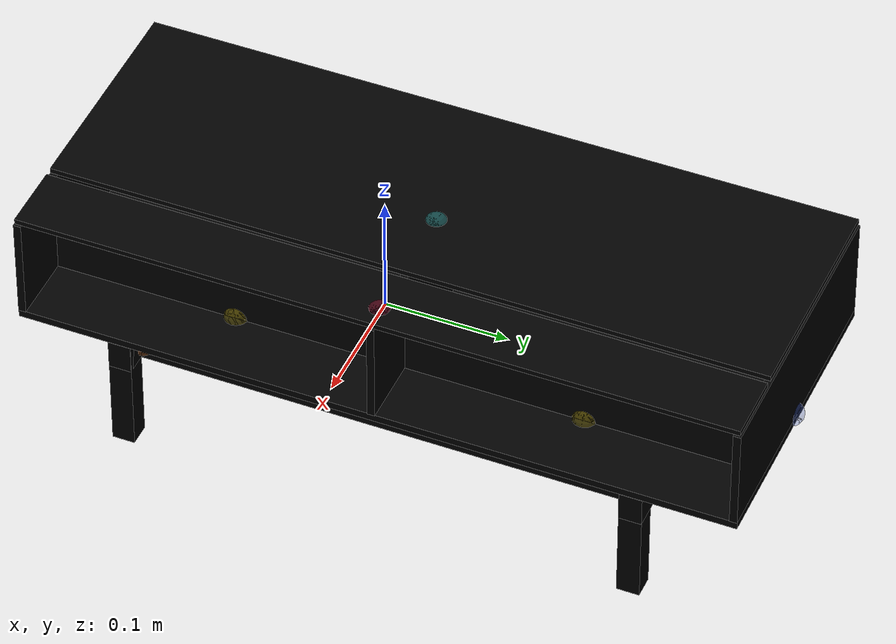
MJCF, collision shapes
<mujoco model="table_liden_0921">
    <asset>
        <mesh file="table_liden_0921/0.stl" name="part0" scale="0.0005 0.0005 0.0005"/>
        <mesh file="table_liden_0921/9.stl" name="part9" scale="0.0005 0.0005 0.0005"/>
        <mesh file="table_liden_0921/8.stl" name="part8" scale="0.0005 0.0005 0.0005"/>
        <mesh file="table_liden_0921/7.stl" name="part7" scale="0.0005 0.0005 0.0005"/>
        <mesh file="table_liden_0921/6.stl" name="part6" scale="0.0005 0.0005 0.0005"/>
        <mesh file="table_liden_0921/5.stl" name="part5" scale="0.0005 0.0005 0.0005"/>
        <mesh file="table_liden_0921/4.stl" name="part4" scale="0.0005 0.0005 0.0005"/>
        <mesh file="table_liden_0921/3.stl" name="part3" scale="0.0005 0.0005 0.0005"/>
        <mesh file="table_liden_0921/2.stl" name="part2" scale="0.0005 0.0005 0.0005"/>
        <mesh file="table_liden_0921/11.stl" name="part11" scale="0.0005 0.0005 0.0005"/>
        <mesh file="table_liden_0921/10.stl" name="part10" scale="0.0005 0.0005 0.0005"/>
        <mesh file="table_liden_0921/1.stl" name="part1" scale="0.0005 0.0005 0.0005"/>
    </asset>
    <equality>
        <weld active="false" body1="0_part0" body2="1_part1" solimp="1 1 0.5" solref="0.01 0.3"/>
        <weld active="false" body1="9_part7" body2="3_part11" solimp="1 1 0.5" solref="0.01 0.3"/>
        <weld active="false" body1="9_part7" body2="2_part10" solimp="1 1 0.5" solref="0.01 0.3"/>
        <weld active="false" body1="10_part8" body2="3_part11" solimp="1 1 0.5" solref="0.01 0.3"/>
        <weld active="false" body1="10_part8" body2="2_part10" solimp="1 1 0.5" solref="0.01 0.3"/>
        <weld active="false" body1="11_part9" body2="5_part3" solimp="1 1 0.5" solref="0.01 0.3"/>
        <weld active="false" body1="11_part9" body2="6_part4" solimp="1 1 0.5" solref="0.01 0.3"/>
        <weld active="false" body1="4_part2" body2="1_part1" solimp="1 1 0.5" solref="0.01 0.3"/>
        <weld active="false" body1="9_part7" body2="3_part11" solimp="1 1 0.5" solref="0.01 0.3"/>
        <weld active="false" body1="9_part7" body2="2_part10" solimp="1 1 0.5" solref="0.01 0.3"/>
        <weld active="false" body1="10_part8" body2="3_part11" solimp="1 1 0.5" solref="0.01 0.3"/>
        <weld active="false" body1="10_part8" body2="2_part10" solimp="1 1 0.5" solref="0.01 0.3"/>
        <weld active="false" body1="11_part9" body2="7_part5" solimp="1 1 0.5" solref="0.01 0.3"/>
        <weld active="false" body1="11_part9" body2="8_part6" solimp="1 1 0.5" solref="0.01 0.3"/>
        <weld active="false" body1="11_part9" body2="3_part11" solimp="1 1 0.5" solref="0.01 0.3"/>
        <weld active="false" body1="11_part9" body2="2_part10" solimp="1 1 0.5" solref="0.01 0.3"/>
    </equality>
    <worldbody>
        <body name="0_part0" pos="0.0 2e-09 0.0" quat="1 0 0 0">
            <geom conaffinity="0" contype="0" density="0" mesh="part0" name="0_part0_mesh" pos="0.0 0.0 0.0"
                  rgba="0.82 0.71 0.55 1" type="mesh"/>
            <site name="0_part0_horizontal_radius_site" pos="0.0 2e-09 0.0" quat="1 0 0 0" rgba="0 0 0 0"
                  size="0.0005"/>
            <site name="0_part0_top_site" pos="0.0 2e-09 0.004842390100000001" quat="1 0 0 0" rgba="0 0 0 0"
                  size="0.0005"/>
            <site name="0_part0_bottom_site" pos="0.0 2e-09 -0.004842390100000001" quat="1 0 0 0" rgba="0 0 0 0"
                  size="0.0005"/>
            <site name="0_part0_corner_site8" pos="-0.0285750122 0.2984500162 0.004842390100000001" quat="1 0 0 0"
                  rgba="0 0 0 0" size="0.01"/>
            <site name="0_part0_corner_site7" pos="0.0285750122 0.2984500162 0.004842390100000001" quat="1 0 0 0"
                  rgba="0 0 0 0" size="0.01"/>
            <site name="0_part0_corner_site6" pos="0.0285750122 -0.2984500122 0.004842390100000001" quat="1 0 0 0"
                  rgba="0 0 0 0" size="0.01"/>
            <site name="0_part0_corner_site5" pos="-0.0285750122 -0.2984500122 0.004842390100000001" quat="1 0 0 0"
                  rgba="0 0 0 0" size="0.01"/>
            <site name="0_part0_corner_site4" pos="-0.0285750122 0.2984500162 -0.004842390100000001" quat="1 0 0 0"
                  rgba="0 0 0 0" size="0.01"/>
            <site name="0_part0_corner_site3" pos="0.0285750122 0.2984500162 -0.004842390100000001" quat="1 0 0 0"
                  rgba="0 0 0 0" size="0.01"/>
            <site name="0_part0_corner_site2" pos="0.0285750122 -0.2984500122 -0.004842390100000001" quat="1 0 0 0"
                  rgba="0 0 0 0" size="0.01"/>
            <site name="0_part0_corner_site1" pos="-0.0285750122 -0.2984500122 -0.004842390100000001" quat="1 0 0 0"
                  rgba="0 0 0 0" size="0.01"/>
            <geom density="50" name="noviz_collision_0_part0_0" pos="-0.00045000000000000004 -0.00015 0.00141656"
                  quat="1 0 0 0" rgba="0 0 0 0" size="0.02825 0.2975 0.0022500000000000003" solref="0.001 1"
                  type="box"/>
            <site name="thintop-middle,0,180,conn_site1" pos="0.009495 -0.0006500000000000001 -0.001325" quat="1 0 0 0"
                  rgba="0.9019 0.0980 0.2941 0.3" size="0.01"/>
        </body>
        <body name="11_part9" pos="-0.0984249954 2e-09 -0.09358261059999999" quat="1 0 0 0">
            <geom conaffinity="0" contype="0" density="0" mesh="part9" name="11_part9_mesh" pos="0.0 0.0 0.0"
                  rgba="0.82 0.71 0.55 1" type="mesh"/>
            <site name="11_part9_horizontal_radius_site" pos="0.0 2e-09 5e-11" quat="1 0 0 0" rgba="0 0 0 0"
                  size="0.0005"/>
            <site name="11_part9_top_site" pos="0.0 2e-09 0.0031750007500000003" quat="1 0 0 0" rgba="0 0 0 0"
                  size="0.0005"/>
            <site name="11_part9_bottom_site" pos="0.0 2e-09 -0.00317500065" quat="1 0 0 0" rgba="0 0 0 0"
                  size="0.0005"/>
            <site name="11_part9_corner_site8" pos="-0.12700000765 0.2984500162 0.0031750007500000003" quat="1 0 0 0"
                  rgba="0 0 0 0" size="0.01"/>
            <site name="11_part9_corner_site7" pos="0.12700000765 0.2984500162 0.0031750007500000003" quat="1 0 0 0"
                  rgba="0 0 0 0" size="0.01"/>
            <site name="11_part9_corner_site6" pos="0.12700000765 -0.2984500122 0.0031750007500000003" quat="1 0 0 0"
                  rgba="0 0 0 0" size="0.01"/>
            <site name="11_part9_corner_site5" pos="-0.12700000765 -0.2984500122 0.0031750007500000003" quat="1 0 0 0"
                  rgba="0 0 0 0" size="0.01"/>
            <site name="11_part9_corner_site4" pos="-0.12700000765 0.2984500162 -0.00317500065" quat="1 0 0 0"
                  rgba="0 0 0 0" size="0.01"/>
            <site name="11_part9_corner_site3" pos="0.12700000765 0.2984500162 -0.00317500065" quat="1 0 0 0"
                  rgba="0 0 0 0" size="0.01"/>
            <site name="11_part9_corner_site2" pos="0.12700000765 -0.2984500122 -0.00317500065" quat="1 0 0 0"
                  rgba="0 0 0 0" size="0.01"/>
            <site name="11_part9_corner_site1" pos="-0.12700000765 -0.2984500122 -0.00317500065" quat="1 0 0 0"
                  rgba="0 0 0 0" size="0.01"/>
            <geom density="50" name="noviz_collision_11_part9_0"
                  pos="-1e-08 1.5000000000000002e-08 2.2505000000000002e-05" quat="1 0 0 0" rgba="0 0 0 0"
                  size="0.127 0.29845004999999997 0.0031975099999999998" solref="0.001 1" type="box"/>
            <site name="floor-foot,0,conn_site2" pos="0.00017499500000000003 0.2111 -0.002017385" quat="1 0 0 0"
                  rgba="0.2352 0.7058 0.2941 0.3" size="0.01"/>
            <site name="floor-foot,0,conn_site1" pos="-0.00037501 -0.2085 -0.00206739" quat="1 0 0 0"
                  rgba="0.2352 0.7058 0.2941 0.3" size="0.01"/>
            <site name="floor-smallmiddle,0,conn_site2" pos="0.06757500000000001 0.1515 0.00308261" quat="1 0 0 0"
                  rgba="1.0 0.8823 0.0980 0.3" size="0.01"/>
            <site name="floor-smallmiddle,0,conn_site1" pos="0.06807500000000001 -0.1396 0.0031750050000000003"
                  quat="1 0 0 0" rgba="1.0 0.8823 0.0980 0.3" size="0.01"/>
            <site name="floor-sidewall,0,conn_site2" pos="0.0 0.2945 0.0031750050000000003" quat="1 0 0 0"
                  rgba="0.2627 0.3882 0.8470 0.3" size="0.01"/>
            <site name="floor-sidewall,0,conn_site1" pos="0.0 -0.293 0.00308261" quat="1 0 0 0"
                  rgba="0.2627 0.3882 0.8470 0.3" size="0.01"/>
        </body>
        <body name="10_part8" pos="-0.20161250014999998 2e-09 -0.10945761155" quat="1 0 0 0">
            <geom conaffinity="0" contype="0" density="0" mesh="part8" name="10_part8_mesh" pos="0.0 0.0 0.0"
                  rgba="0.82 0.71 0.55 1" type="mesh"/>
            <site name="10_part8_horizontal_radius_site" pos="-0.0 2e-09 -1e-10" quat="1 0 0 0" rgba="0 0 0 0"
                  size="0.0005"/>
            <site name="10_part8_top_site" pos="0.0 2e-09 0.01270000155" quat="1 0 0 0" rgba="0 0 0 0" size="0.0005"/>
            <site name="10_part8_bottom_site" pos="0.0 2e-09 -0.0127000017" quat="1 0 0 0" rgba="0 0 0 0"
                  size="0.0005"/>
            <site name="10_part8_corner_site8" pos="-0.0047625 0.2032000162 0.01270000155" quat="1 0 0 0" rgba="0 0 0 0"
                  size="0.01"/>
            <site name="10_part8_corner_site7" pos="0.0047625 0.2032000162 0.01270000155" quat="1 0 0 0" rgba="0 0 0 0"
                  size="0.01"/>
            <site name="10_part8_corner_site6" pos="0.0047625 -0.2032000122 0.01270000155" quat="1 0 0 0" rgba="0 0 0 0"
                  size="0.01"/>
            <site name="10_part8_corner_site5" pos="-0.0047625 -0.2032000122 0.01270000155" quat="1 0 0 0"
                  rgba="0 0 0 0" size="0.01"/>
            <site name="10_part8_corner_site4" pos="-0.0047625 0.2032000162 -0.0127000017" quat="1 0 0 0" rgba="0 0 0 0"
                  size="0.01"/>
            <site name="10_part8_corner_site3" pos="0.0047625 0.2032000162 -0.0127000017" quat="1 0 0 0" rgba="0 0 0 0"
                  size="0.01"/>
            <site name="10_part8_corner_site2" pos="0.0047625 -0.2032000122 -0.0127000017" quat="1 0 0 0" rgba="0 0 0 0"
                  size="0.01"/>
            <site name="10_part8_corner_site1" pos="-0.0047625 -0.2032000122 -0.0127000017" quat="1 0 0 0"
                  rgba="0 0 0 0" size="0.01"/>
            <geom density="50" name="noviz_collision_10_part8_0" pos="0.0 1e-08 0.00032733" quat="1 0 0 0"
                  rgba="0 0 0 0" size="0.004762495 0.20320005000000002 0.013027335000000001" solref="0.001 1"
                  type="box"/>
            <site name="left-foot,0,180,conn_site2" pos="0.0008125000000000001 0.20327 -0.00094239"
                  quat="0.7071067 -0.7071068 0 0" rgba="0.9607 0.5098 0.1921 0.3" size="0.01"/>
            <site name="right-foot,0,180,conn_site2" pos="0.00021251 -0.20381000000000002 -0.000492385"
                  quat="0.7071067 0.7071068 0 0" rgba="0.5686 0.1176 0.7058 0.3" size="0.01"/>
        </body>
        <body name="9_part7" pos="0.00476249985 2e-09 -0.10945761155" quat="1 0 0 0">
            <geom conaffinity="0" contype="0" density="0" mesh="part7" name="9_part7_mesh" pos="0.0 0.0 0.0"
                  rgba="0.82 0.71 0.55 1" type="mesh"/>
            <site name="9_part7_horizontal_radius_site" pos="0.0 2e-09 -1e-10" quat="1 0 0 0" rgba="0 0 0 0"
                  size="0.0005"/>
            <site name="9_part7_top_site" pos="0.0 2e-09 0.01270000155" quat="1 0 0 0" rgba="0 0 0 0" size="0.0005"/>
            <site name="9_part7_bottom_site" pos="0.0 2e-09 -0.0127000017" quat="1 0 0 0" rgba="0 0 0 0" size="0.0005"/>
            <site name="9_part7_corner_site8" pos="-0.0047625 0.2032000162 0.01270000155" quat="1 0 0 0" rgba="0 0 0 0"
                  size="0.01"/>
            <site name="9_part7_corner_site7" pos="0.0047625 0.2032000162 0.01270000155" quat="1 0 0 0" rgba="0 0 0 0"
                  size="0.01"/>
            <site name="9_part7_corner_site6" pos="0.0047625 -0.2032000122 0.01270000155" quat="1 0 0 0" rgba="0 0 0 0"
                  size="0.01"/>
            <site name="9_part7_corner_site5" pos="-0.0047625 -0.2032000122 0.01270000155" quat="1 0 0 0" rgba="0 0 0 0"
                  size="0.01"/>
            <site name="9_part7_corner_site4" pos="-0.0047625 0.2032000162 -0.0127000017" quat="1 0 0 0" rgba="0 0 0 0"
                  size="0.01"/>
            <site name="9_part7_corner_site3" pos="0.0047625 0.2032000162 -0.0127000017" quat="1 0 0 0" rgba="0 0 0 0"
                  size="0.01"/>
            <site name="9_part7_corner_site2" pos="0.0047625 -0.2032000122 -0.0127000017" quat="1 0 0 0" rgba="0 0 0 0"
                  size="0.01"/>
            <site name="9_part7_corner_site1" pos="-0.0047625 -0.2032000122 -0.0127000017" quat="1 0 0 0" rgba="0 0 0 0"
                  size="0.01"/>
            <geom density="50" name="noviz_collision_9_part7_0" pos="0.0 1e-08 0.00032733" quat="1 0 0 0" rgba="0 0 0 0"
                  size="0.0047625 0.20320005000000002 0.013027335000000001" solref="0.001 1" type="box"/>
            <site name="left-foot,0,180,conn_site1" pos="0.0004375 -0.203655 -0.00203739" quat="0.7071067 0.7071068 0 0"
                  rgba="0.9607 0.5098 0.1921 0.3" size="0.01"/>
            <site name="right-foot,0,180,conn_site1" pos="-0.0004125 0.20465 -0.001142385"
                  quat="0.7071067 -0.7071068 0 0" rgba="0.5686 0.1176 0.7058 0.3" size="0.01"/>
        </body>
        <body name="8_part6" pos="-0.0984249954 -0.295275 -0.0459576084" quat="1 0 0 0">
            <geom conaffinity="0" contype="0" density="0" mesh="part6" name="8_part6_mesh" pos="0.0 0.0 0.0"
                  rgba="0.82 0.71 0.55 1" type="mesh"/>
            <site name="8_part6_horizontal_radius_site" pos="0.0 0.0 0.0" quat="1 0 0 0" rgba="0 0 0 0" size="0.0005"/>
            <site name="8_part6_top_site" pos="0.0 5e-11 0.0444500046" quat="1 0 0 0" rgba="0 0 0 0" size="0.0005"/>
            <site name="8_part6_bottom_site" pos="0.0 5e-11 -0.0444500046" quat="1 0 0 0" rgba="0 0 0 0" size="0.0005"/>
            <site name="8_part6_corner_site8" pos="-0.12700000765 0.0031750162 0.0444500046" quat="1 0 0 0"
                  rgba="0 0 0 0" size="0.01"/>
            <site name="8_part6_corner_site7" pos="0.12700000765 0.0031750162 0.0444500046" quat="1 0 0 0"
                  rgba="0 0 0 0" size="0.01"/>
            <site name="8_part6_corner_site6" pos="0.12700000765 -0.00317501615 0.0444500046" quat="1 0 0 0"
                  rgba="0 0 0 0" size="0.01"/>
            <site name="8_part6_corner_site5" pos="-0.12700000765 -0.00317501615 0.0444500046" quat="1 0 0 0"
                  rgba="0 0 0 0" size="0.01"/>
            <site name="8_part6_corner_site4" pos="-0.12700000765 0.0031750162 -0.0444500046" quat="1 0 0 0"
                  rgba="0 0 0 0" size="0.01"/>
            <site name="8_part6_corner_site3" pos="0.12700000765 0.0031750162 -0.0444500046" quat="1 0 0 0"
                  rgba="0 0 0 0" size="0.01"/>
            <site name="8_part6_corner_site2" pos="0.12700000765 -0.00317501615 -0.0444500046" quat="1 0 0 0"
                  rgba="0 0 0 0" size="0.01"/>
            <site name="8_part6_corner_site1" pos="-0.12700000765 -0.00317501615 -0.0444500046" quat="1 0 0 0"
                  rgba="0 0 0 0" size="0.01"/>
            <geom density="50" name="noviz_collision_8_part6_0" pos="0.00020955 5.86e-06 -0.000165655" quat="1 0 0 0"
                  rgba="0 0 0 0" size="0.12720955 0.00318088 0.04428435000000001" solref="0.001 1" type="box"/>
            <site name="sidewall-floor,0,conn_site1" pos="0.0 0.002274995 -0.044542395" quat="1 0 0 0"
                  rgba="0.2627 0.3882 0.8470 0.3" size="0.01"/>
        </body>
        <body name="7_part5" pos="-0.0984249954 0.29527501619999996 -0.0459576084" quat="1 0 0 0">
            <geom conaffinity="0" contype="0" density="0" mesh="part5" name="7_part5_mesh" pos="0.0 0.0 0.0"
                  rgba="0.82 0.71 0.55 1" type="mesh"/>
            <site name="7_part5_horizontal_radius_site" pos="0.0 -0.0 0.0" quat="1 0 0 0" rgba="0 0 0 0" size="0.0005"/>
            <site name="7_part5_top_site" pos="0.0 0.0 0.0444500046" quat="1 0 0 0" rgba="0 0 0 0" size="0.0005"/>
            <site name="7_part5_bottom_site" pos="0.0 0.0 -0.0444500046" quat="1 0 0 0" rgba="0 0 0 0" size="0.0005"/>
            <site name="7_part5_corner_site8" pos="-0.12700000765 0.003175 0.0444500046" quat="1 0 0 0" rgba="0 0 0 0"
                  size="0.01"/>
            <site name="7_part5_corner_site7" pos="0.12700000765 0.003175 0.0444500046" quat="1 0 0 0" rgba="0 0 0 0"
                  size="0.01"/>
            <site name="7_part5_corner_site6" pos="0.12700000765 -0.003175 0.0444500046" quat="1 0 0 0" rgba="0 0 0 0"
                  size="0.01"/>
            <site name="7_part5_corner_site5" pos="-0.12700000765 -0.003175 0.0444500046" quat="1 0 0 0" rgba="0 0 0 0"
                  size="0.01"/>
            <site name="7_part5_corner_site4" pos="-0.12700000765 0.003175 -0.0444500046" quat="1 0 0 0" rgba="0 0 0 0"
                  size="0.01"/>
            <site name="7_part5_corner_site3" pos="0.12700000765 0.003175 -0.0444500046" quat="1 0 0 0" rgba="0 0 0 0"
                  size="0.01"/>
            <site name="7_part5_corner_site2" pos="0.12700000765 -0.003175 -0.0444500046" quat="1 0 0 0" rgba="0 0 0 0"
                  size="0.01"/>
            <site name="7_part5_corner_site1" pos="-0.12700000765 -0.003175 -0.0444500046" quat="1 0 0 0" rgba="0 0 0 0"
                  size="0.01"/>
            <geom density="50" name="noviz_collision_7_part5_0" pos="0.00020681 -5.7999999999999995e-06 -0.000156385"
                  quat="1 0 0 0" rgba="0 0 0 0" size="0.1272068 0.0031692200000000004 0.04429362" solref="0.001 1"
                  type="box"/>
            <site name="sidewall-floor,0,conn_site2" pos="0.0 -0.0007750249999999999 -0.04445" quat="1 0 0 0"
                  rgba="0.2627 0.3882 0.8470 0.3" size="0.01"/>
        </body>
        <body name="6_part4" pos="-0.03175000015 0.14763750820000002 -0.07453261159999999" quat="1 0 0 0">
            <geom conaffinity="0" contype="0" density="0" mesh="part4" name="6_part4_mesh" pos="0.0 0.0 0.0"
                  rgba="0.82 0.71 0.55 1" type="mesh"/>
            <site name="6_part4_horizontal_radius_site" pos="0.0 0.0 -2e-10" quat="1 0 0 0" rgba="0 0 0 0"
                  size="0.0005"/>
            <site name="6_part4_top_site" pos="0.0 0.0 0.01587500155" quat="1 0 0 0" rgba="0 0 0 0" size="0.0005"/>
            <site name="6_part4_bottom_site" pos="0.0 0.0 -0.0158750019" quat="1 0 0 0" rgba="0 0 0 0" size="0.0005"/>
            <site name="6_part4_corner_site8" pos="-0.003175 0.14446252440000001 0.01587500155" quat="1 0 0 0"
                  rgba="0 0 0 0" size="0.01"/>
            <site name="6_part4_corner_site7" pos="0.003175 0.14446252440000001 0.01587500155" quat="1 0 0 0"
                  rgba="0 0 0 0" size="0.01"/>
            <site name="6_part4_corner_site6" pos="0.003175 -0.14446252440000001 0.01587500155" quat="1 0 0 0"
                  rgba="0 0 0 0" size="0.01"/>
            <site name="6_part4_corner_site5" pos="-0.003175 -0.14446252440000001 0.01587500155" quat="1 0 0 0"
                  rgba="0 0 0 0" size="0.01"/>
            <site name="6_part4_corner_site4" pos="-0.003175 0.14446252440000001 -0.0158750019" quat="1 0 0 0"
                  rgba="0 0 0 0" size="0.01"/>
            <site name="6_part4_corner_site3" pos="0.003175 0.14446252440000001 -0.0158750019" quat="1 0 0 0"
                  rgba="0 0 0 0" size="0.01"/>
            <site name="6_part4_corner_site2" pos="0.003175 -0.14446252440000001 -0.0158750019" quat="1 0 0 0"
                  rgba="0 0 0 0" size="0.01"/>
            <site name="6_part4_corner_site1" pos="-0.003175 -0.14446252440000001 -0.0158750019" quat="1 0 0 0"
                  rgba="0 0 0 0" size="0.01"/>
            <geom density="50" name="noviz_collision_6_part4_0" pos="0.0 -0.000151365 9.100000000000001e-06"
                  quat="1 0 0 0" rgba="0 0 0 0" size="0.003175 0.14431115 0.01588411" solref="0.001 1" type="box"/>
            <site name="smallmiddle-floor,0,conn_site2" pos="0.0009000000000000001 0.00386249 -0.01596739"
                  quat="1 0 0 0" rgba="1.0 0.8823 0.0980 0.3" size="0.01"/>
        </body>
        <body name="5_part3" pos="-0.03175000015 -0.14763751020000002 -0.07453261159999999" quat="1 0 0 0">
            <geom conaffinity="0" contype="0" density="0" mesh="part3" name="5_part3_mesh" pos="0.0 0.0 0.0"
                  rgba="0.82 0.71 0.55 1" type="mesh"/>
            <site name="5_part3_horizontal_radius_site" pos="0.0 2e-09 -2e-10" quat="1 0 0 0" rgba="0 0 0 0"
                  size="0.0005"/>
            <site name="5_part3_top_site" pos="0.0 2e-09 0.01587500155" quat="1 0 0 0" rgba="0 0 0 0" size="0.0005"/>
            <site name="5_part3_bottom_site" pos="0.0 2e-09 -0.0158750019" quat="1 0 0 0" rgba="0 0 0 0" size="0.0005"/>
            <site name="5_part3_corner_site8" pos="-0.003175 0.1444625284 0.01587500155" quat="1 0 0 0" rgba="0 0 0 0"
                  size="0.01"/>
            <site name="5_part3_corner_site7" pos="0.003175 0.1444625284 0.01587500155" quat="1 0 0 0" rgba="0 0 0 0"
                  size="0.01"/>
            <site name="5_part3_corner_site6" pos="0.003175 -0.14446252440000001 0.01587500155" quat="1 0 0 0"
                  rgba="0 0 0 0" size="0.01"/>
            <site name="5_part3_corner_site5" pos="-0.003175 -0.14446252440000001 0.01587500155" quat="1 0 0 0"
                  rgba="0 0 0 0" size="0.01"/>
            <site name="5_part3_corner_site4" pos="-0.003175 0.1444625284 -0.0158750019" quat="1 0 0 0" rgba="0 0 0 0"
                  size="0.01"/>
            <site name="5_part3_corner_site3" pos="0.003175 0.1444625284 -0.0158750019" quat="1 0 0 0" rgba="0 0 0 0"
                  size="0.01"/>
            <site name="5_part3_corner_site2" pos="0.003175 -0.14446252440000001 -0.0158750019" quat="1 0 0 0"
                  rgba="0 0 0 0" size="0.01"/>
            <site name="5_part3_corner_site1" pos="-0.003175 -0.14446252440000001 -0.0158750019" quat="1 0 0 0"
                  rgba="0 0 0 0" size="0.01"/>
            <geom density="50" name="noviz_collision_5_part3_0" pos="0.0 3.8115000000000004e-05 -1.0375000000000001e-05"
                  quat="1 0 0 0" rgba="0 0 0 0" size="0.003175 0.14450065 0.01586463" solref="0.001 1" type="box"/>
            <site name="smallmiddle-floor,0,conn_site1" pos="0.0014 0.008037505 -0.015875" quat="1 0 0 0"
                  rgba="1.0 0.8823 0.0980 0.3" size="0.01"/>
        </body>
        <body name="4_part2" pos="-0.1301749954 2e-09 0.0016673901" quat="1 0 0 0">
            <geom conaffinity="0" contype="0" density="1" mesh="part2" name="4_part2_mesh" pos="0.0 0.0 0.0"
                  rgba="0.82 0.71 0.55 1" type="mesh"/>
            <site name="4_part2_horizontal_radius_site" pos="0.0 2e-09 0.0" quat="1 0 0 0" rgba="0 0 0 0"
                  size="0.0005"/>
            <site name="4_part2_top_site" pos="0.0 2e-09 0.003175" quat="1 0 0 0" rgba="0 0 0 0" size="0.0005"/>
            <site name="4_part2_bottom_site" pos="0.0 2e-09 -0.003175" quat="1 0 0 0" rgba="0 0 0 0" size="0.0005"/>
            <site name="4_part2_corner_site8" pos="-0.09525000765 0.2984500162 0.003175" quat="1 0 0 0" rgba="0 0 0 0"
                  size="0.01"/>
            <site name="4_part2_corner_site7" pos="0.09525000765 0.2984500162 0.003175" quat="1 0 0 0" rgba="0 0 0 0"
                  size="0.01"/>
            <site name="4_part2_corner_site6" pos="0.09525000765 -0.2984500122 0.003175" quat="1 0 0 0" rgba="0 0 0 0"
                  size="0.01"/>
            <site name="4_part2_corner_site5" pos="-0.09525000765 -0.2984500122 0.003175" quat="1 0 0 0" rgba="0 0 0 0"
                  size="0.01"/>
            <site name="4_part2_corner_site4" pos="-0.09525000765 0.2984500162 -0.003175" quat="1 0 0 0" rgba="0 0 0 0"
                  size="0.01"/>
            <site name="4_part2_corner_site3" pos="0.09525000765 0.2984500162 -0.003175" quat="1 0 0 0" rgba="0 0 0 0"
                  size="0.01"/>
            <site name="4_part2_corner_site2" pos="0.09525000765 -0.2984500122 -0.003175" quat="1 0 0 0" rgba="0 0 0 0"
                  size="0.01"/>
            <site name="4_part2_corner_site1" pos="-0.09525000765 -0.2984500122 -0.003175" quat="1 0 0 0" rgba="0 0 0 0"
                  size="0.01"/>
            <site name="top-middle,0,180,conn_site1" pos="0.032124985 5e-09 -0.00221739" quat="1 0 0 0"
                  rgba="0.2745 0.9411 0.9411 0.3" size="0.01"/>
            <geom density="50" name="noviz_collision_4_part2_0" pos="0.0 -0.00015 0.0005" quat="1 0 0 0" rgba="0 0 0 0"
                  size="0.095 0.2975 0.0022500000000000003" solref="0.001 1" type="box"/>
        </body>
        <body name="3_part11" pos="-0.0984249954 -0.21272502445000002 -0.1475576099" quat="1 0 0 0">
            <geom conaffinity="0" contype="0" density="0" mesh="part11" name="3_part11_mesh" pos="0.0 0.0 0.0"
                  rgba="0.82 0.71 0.55 1" type="mesh"/>
            <site name="3_part11_horizontal_radius_site" pos="0.0 -0.0 0.0" quat="1 0 0 0" rgba="0 0 0 0"
                  size="0.0005"/>
            <site name="3_part11_top_site" pos="0.0 -0.0 0.0508" quat="1 0 0 0" rgba="0 0 0 0" size="0.0005"/>
            <site name="3_part11_bottom_site" pos="0.0 -0.0 -0.0508" quat="1 0 0 0" rgba="0 0 0 0" size="0.0005"/>
            <site name="3_part11_corner_site8" pos="-0.12700000765 0.009525040600000001 0.0508" quat="1 0 0 0"
                  rgba="0 0 0 0" size="0.01"/>
            <site name="3_part11_corner_site7" pos="0.12700000765 0.009525040600000001 0.0508" quat="1 0 0 0"
                  rgba="0 0 0 0" size="0.01"/>
            <site name="3_part11_corner_site6" pos="0.12700000765 -0.00952504065 0.0508" quat="1 0 0 0" rgba="0 0 0 0"
                  size="0.01"/>
            <site name="3_part11_corner_site5" pos="-0.12700000765 -0.00952504065 0.0508" quat="1 0 0 0" rgba="0 0 0 0"
                  size="0.01"/>
            <site name="3_part11_corner_site4" pos="-0.12700000765 0.009525040600000001 -0.0508" quat="1 0 0 0"
                  rgba="0 0 0 0" size="0.01"/>
            <site name="3_part11_corner_site3" pos="0.12700000765 0.009525040600000001 -0.0508" quat="1 0 0 0"
                  rgba="0 0 0 0" size="0.01"/>
            <site name="3_part11_corner_site2" pos="0.12700000765 -0.00952504065 -0.0508" quat="1 0 0 0" rgba="0 0 0 0"
                  size="0.01"/>
            <site name="3_part11_corner_site1" pos="-0.12700000765 -0.00952504065 -0.0508" quat="1 0 0 0" rgba="0 0 0 0"
                  size="0.01"/>
            <geom density="50" name="noviz_collision_3_part11_0" pos="-1e-08 -6.5095e-05 0.038057614999999996"
                  quat="1 0 0 0" rgba="0 0 0 0" size="0.127 0.0094599 0.0125" solref="0.001 1" type="box"/>
            <geom density="50" name="noviz_collision_3_part11_1" pos="0.117425 -6.5095e-05 -0.000942385" quat="1 0 0 0"
                  rgba="0 0 0 0" size="0.00925 0.0094599 0.05" solref="0.001 1" type="box"/>
            <geom density="50" name="noviz_collision_3_part11_2" pos="-0.117275 -6.5095e-05 -0.000942385" quat="1 0 0 0"
                  rgba="0 0 0 0" size="0.00925 0.0094599 0.05" solref="0.001 1" type="box"/>
            <site name="foot-floor,0,conn_site1" pos="-0.00037501 0.0042250199999999995 0.051907600000000005"
                  quat="1 0 0 0" rgba="0.2352 0.7058 0.2941 0.3" size="0.01"/>
            <site name="foot-right,0,180,conn_site2" pos="-0.102975 0.008915025 0.03760762"
                  quat="0.7071067 0.7071068 0 0" rgba="0.5686 0.1176 0.7058 0.3" size="0.01"/>
            <site name="foot-left,0,180,conn_site1" pos="0.10362500000000001 0.009070024999999999 0.036062615"
                  quat="0.7071067 0.7071068 0 0" rgba="0.9607 0.5098 0.1921 0.3" size="0.01"/>
        </body>
        <body name="2_part10" pos="-0.0984249954 0.212725012 -0.1475576099" quat="1 0 0 0">
            <geom conaffinity="0" contype="0" density="0" mesh="part10" name="2_part10_mesh" pos="0.0 0.0 0.0"
                  rgba="0.82 0.71 0.55 1" type="mesh"/>
            <site name="2_part10_horizontal_radius_site" pos="0.0 -2e-10 0.0" quat="1 0 0 0" rgba="0 0 0 0"
                  size="0.0005"/>
            <site name="2_part10_top_site" pos="0.0 -2e-10 0.0508" quat="1 0 0 0" rgba="0 0 0 0" size="0.0005"/>
            <site name="2_part10_bottom_site" pos="0.0 -2e-10 -0.0508" quat="1 0 0 0" rgba="0 0 0 0" size="0.0005"/>
            <site name="2_part10_corner_site8" pos="-0.12700000765 0.009525004 0.0508" quat="1 0 0 0" rgba="0 0 0 0"
                  size="0.01"/>
            <site name="2_part10_corner_site7" pos="0.12700000765 0.009525004 0.0508" quat="1 0 0 0" rgba="0 0 0 0"
                  size="0.01"/>
            <site name="2_part10_corner_site6" pos="0.12700000765 -0.0095250044 0.0508" quat="1 0 0 0" rgba="0 0 0 0"
                  size="0.01"/>
            <site name="2_part10_corner_site5" pos="-0.12700000765 -0.0095250044 0.0508" quat="1 0 0 0" rgba="0 0 0 0"
                  size="0.01"/>
            <site name="2_part10_corner_site4" pos="-0.12700000765 0.009525004 -0.0508" quat="1 0 0 0" rgba="0 0 0 0"
                  size="0.01"/>
            <site name="2_part10_corner_site3" pos="0.12700000765 0.009525004 -0.0508" quat="1 0 0 0" rgba="0 0 0 0"
                  size="0.01"/>
            <site name="2_part10_corner_site2" pos="0.12700000765 -0.0095250044 -0.0508" quat="1 0 0 0" rgba="0 0 0 0"
                  size="0.01"/>
            <site name="2_part10_corner_site1" pos="-0.12700000765 -0.0095250044 -0.0508" quat="1 0 0 0" rgba="0 0 0 0"
                  size="0.01"/>
            <geom density="50" name="noviz_collision_2_part10_0" pos="-1e-08 -6.5095e-05 0.038057614999999996"
                  quat="1 0 0 0" rgba="0 0 0 0" size="0.127 0.0094599 0.0125" solref="0.001 1" type="box"/>
            <geom density="50" name="noviz_collision_2_part10_1" pos="0.117425 -6.5095e-05 -0.000942385" quat="1 0 0 0"
                  rgba="0 0 0 0" size="0.00925 0.0094599 0.05" solref="0.001 1" type="box"/>
            <geom density="50" name="noviz_collision_2_part10_2" pos="-0.117275 -6.5095e-05 -0.000942385" quat="1 0 0 0"
                  rgba="0 0 0 0" size="0.00925 0.0094599 0.05" solref="0.001 1" type="box"/>
            <site name="foot-floor,0,conn_site2" pos="0.00017499500000000003 -0.0016250000000000001 0.0519576"
                  quat="1 0 0 0" rgba="0.2352 0.7058 0.2941 0.3" size="0.01"/>
            <site name="foot-left,0,180,conn_site2" pos="-0.10237500000000001 -0.009455 0.037157615"
                  quat="0.7071067 -0.7071068 0 0" rgba="0.9607 0.5098 0.1921 0.3" size="0.01"/>
            <site name="foot-right,0,180,conn_site1" pos="0.102775 -0.00807501 0.03695762"
                  quat="0.7071067 -0.7071068 0 0" rgba="0.5686 0.1176 0.7058 0.3" size="0.01"/>
        </body>
        <body name="1_part1" pos="-0.0984249954 1.22e-08 -0.0459576084" quat="1 0 0 0">
            <geom conaffinity="0" contype="0" density="0" mesh="part1" name="1_part1_mesh" pos="0.0 0.0 0.0"
                  rgba="0.82 0.71 0.55 1" type="mesh"/>
            <site name="1_part1_horizontal_radius_site" pos="0.0 -0.0 0.0" quat="1 0 0 0" rgba="0 0 0 0" size="0.0005"/>
            <site name="1_part1_top_site" pos="0.0 0.0 0.0444500046" quat="1 0 0 0" rgba="0 0 0 0" size="0.0005"/>
            <site name="1_part1_bottom_site" pos="0.0 0.0 -0.0444500046" quat="1 0 0 0" rgba="0 0 0 0" size="0.0005"/>
            <site name="1_part1_corner_site8" pos="-0.12700000765 0.003175004 0.0444500046" quat="1 0 0 0"
                  rgba="0 0 0 0" size="0.01"/>
            <site name="1_part1_corner_site7" pos="0.12700000765 0.003175004 0.0444500046" quat="1 0 0 0" rgba="0 0 0 0"
                  size="0.01"/>
            <site name="1_part1_corner_site6" pos="0.12700000765 -0.003175004 0.0444500046" quat="1 0 0 0"
                  rgba="0 0 0 0" size="0.01"/>
            <site name="1_part1_corner_site5" pos="-0.12700000765 -0.003175004 0.0444500046" quat="1 0 0 0"
                  rgba="0 0 0 0" size="0.01"/>
            <site name="1_part1_corner_site4" pos="-0.12700000765 0.003175004 -0.0444500046" quat="1 0 0 0"
                  rgba="0 0 0 0" size="0.01"/>
            <site name="1_part1_corner_site3" pos="0.12700000765 0.003175004 -0.0444500046" quat="1 0 0 0"
                  rgba="0 0 0 0" size="0.01"/>
            <site name="1_part1_corner_site2" pos="0.12700000765 -0.003175004 -0.0444500046" quat="1 0 0 0"
                  rgba="0 0 0 0" size="0.01"/>
            <site name="1_part1_corner_site1" pos="-0.12700000765 -0.003175004 -0.0444500046" quat="1 0 0 0"
                  rgba="0 0 0 0" size="0.01"/>
            <geom density="50" name="noviz_collision_1_part1_0" pos="0.00034887000000000004 5e-09 -0.00015752"
                  quat="1 0 0 0" rgba="0 0 0 0" size="0.12734890000000001 0.00317501 0.044292490000000004"
                  solref="0.001 1" type="box"/>
            <site name="middle-top,0,180,conn_site1" pos="0.00037499 -5e-09 0.04540761" quat="1 0 0 0"
                  rgba="0.2745 0.9411 0.9411 0.3" size="0.01"/>
            <site name="middle-thintop,0,180,conn_site1" pos="0.10792 -0.00065001 0.044632605" quat="1 0 0 0"
                  rgba="0.9019 0.0980 0.2941 0.3" size="0.01"/>
        </body>
    </worldbody>
    <actuator/>
    <sensor/>
    <contact/>
    <default/>
</mujoco>
